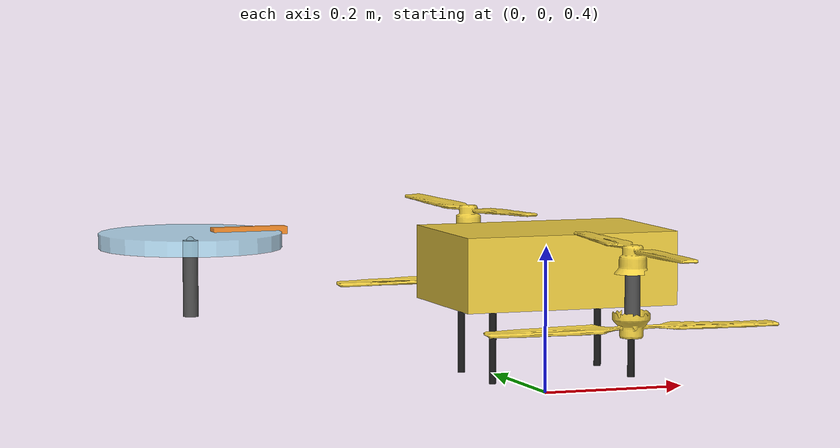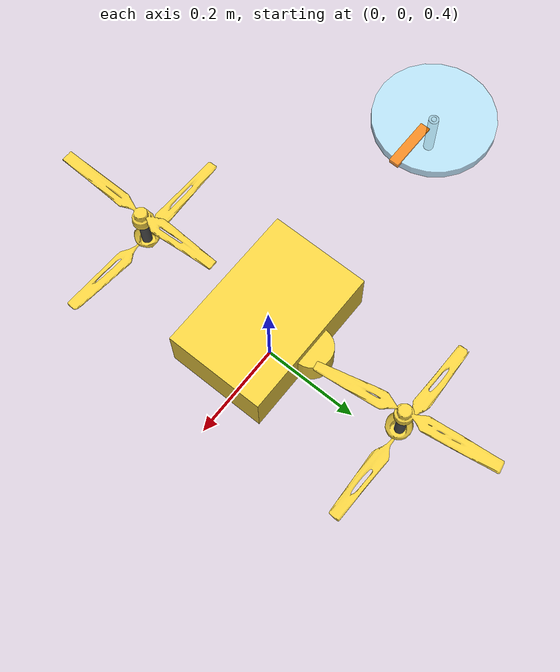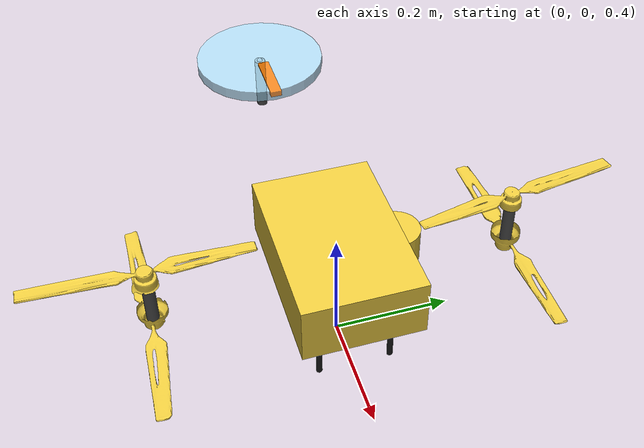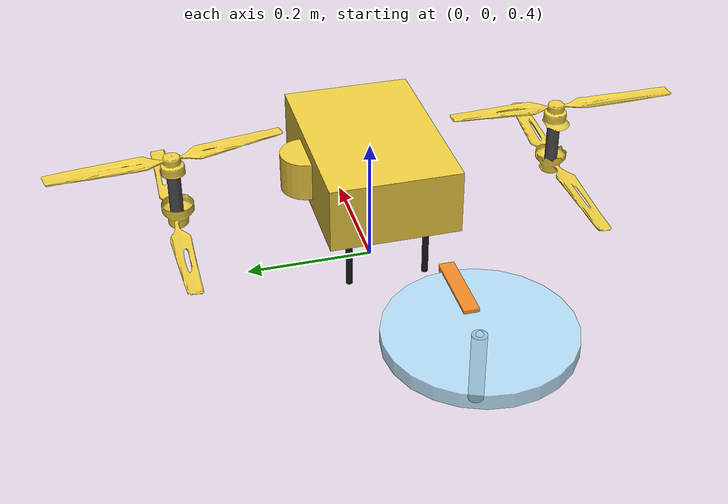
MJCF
<?xml version="1.0" encoding="utf-8"?>
<mujoco>
  <compiler autolimits="true" angle="radian" inertiafromgeom="false" assetdir="assets_hnu"/>

  <!-- 物理环境参数：时间步长、重力、空气密度、粘度 -->
  <option timestep="0.01" gravity="0 0 -9.81" density="1.204" viscosity="1.8e-5"/>

  <asset>
      <!-- 纹理：天空盒渐变效果 -->
      <texture type="skybox" builtin="gradient" width="512" height="512" rgb1="0.6 0.8 1" rgb2="0.2 0.3 0.6"/>

      <!-- 材质：定义视觉和碰撞的材质特性 -->
      <material name="visualGeo" rgba="0.93 0.8 0.25 1"/> <!-- 视觉材质：橙色 -->
      <material name="collisionGeo" rgba="0.3 0.3 0.8 0.5"/> <!-- 碰撞材质：蓝色半透明 -->
      <material name="white" rgba="0.9 0.9 0.9 1"/>
      <material name="orange" rgba="1.0 0.5 0.0 1"/>
      <material name="blue" rgba="0.0 0.5 1.0 1"/>
      <material name="dark_gray" rgba="0.3 0.3 0.3 1"/>
      <material name="cyan" rgba="0.0 1.0 1.0 1"/>
      <material name="black" rgba="0.1 0.1 0.1 1"/>
      <material name="propeller_color1" rgba="0.7 0.9 1.0 0.8"/>
      <material name="propeller_color2" rgba="1.0 0.7 0.7 0.8"/>

      <!-- 网格：只保留螺旋桨部分的网格，其他部分改用基本几何体 -->
      <mesh name="framerb" file="T-framerb.stl"/>
      <mesh name="framert" file="T-framert.stl"/>
      <mesh name="framelb" file="T-framelb.stl"/>
      <mesh name="framelt" file="T-framelt.stl"/>
      <mesh name="frametail" file="T-frametail.stl"/>
  </asset>

  <!-- 修正：将所有default定义合并到同一个顶级default块内 -->
  <default>
      <!-- 无人机类别的默认参数 -->
      <default class="drone">
      <!-- 视觉几何体默认参数：不参与碰撞 -->
      <default class="visual">
          <geom group="2" contype="0" conaffinity="0" material="visualGeo"/>
      </default>
      <!-- 碰撞几何体默认参数：设置接触动力学 -->
      <default class="collision">
          <geom group="3" contype="1" conaffinity="1" material="collisionGeo"/>
      </default>
          <!-- 电机默认控制范围 -->
          <site group="3"/>
          <motor ctrlrange="0 130"/>
      </default>
  </default>

  <worldbody>
    <!-- 无人机主体 -->
    <body name="base_link" pos="0 0 0.575">
    <joint name="free_joint" type="free"/>
    <!-- 无人机机身（立方体） -->
    <geom class="visual" type="box" size="0.15 0.1 0.05"/>
    <geom class="collision" type="box" size="0.15 0.1 0.05"/>
    <inertial pos="0 0 0" mass="3.0" diaginertia="0.01 0.01 0.01"/>
    <site name="imu" pos="0 0 0"/>

      <!-- 机腹四条腿 -->
      <body name="leg_front_right" pos="0.1 0.06 -0.05">
        <geom name="leg_fr" type="cylinder" fromto="0 0 0 0 0 -0.1" size="0.005" material="black" class="visual"/>
        <inertial pos="0 0 -0.05" mass="0.00" diaginertia="0.0001 0.0001 0.0001"/>
      </body>
      <body name="leg_front_left" pos="0.1 -0.06 -0.05">
        <geom name="leg_fl" type="cylinder" fromto="0 0 0 0 0 -0.1" size="0.005" material="black" class="visual"/>
        <inertial pos="0 0 -0.05" mass="0.00" diaginertia="0.0001 0.0001 0.0001"/>
      </body>
      <body name="leg_rear_right" pos="-0.1 0.06 -0.05">
        <geom name="leg_rr" type="cylinder" fromto="0 0 0 0 0 -0.1" size="0.005" material="black" class="visual"/>
        <inertial pos="0 0 -0.05" mass="0.00" diaginertia="0.0001 0.0001 0.0001"/>
      </body>
      <body name="leg_rear_left" pos="-0.1 -0.06 -0.05">
        <geom name="leg_rl" type="cylinder" fromto="0 0 0 0 0 -0.1" size="0.005" material="black" class="visual"/>
        <inertial pos="0 0 -0.05" mass="0.00" diaginertia="0.0001 0.0001 0.0001"/>
      </body>

      <!-- 左机臂和螺旋桨（顺时针旋转 - 橙色） -->
      <body name="right_arm_base" pos="0 0.1 0">
        <!-- 机臂绕自身中心轴旋转关节（Yaw轴） -->
        <joint name="arm_pitch_left" type="hinge" pos="0 0 0" axis="0 1 0" range="-3.1 3.1" damping="0.1"/>

        <!-- 机臂与机身连接的圆柱体 -->
        <!-- 几何体：改用圆柱体表示视觉，保持碰撞圆柱 -->
        <geom class="visual" type="cylinder" size="0.04 0.03"/>
        <geom class="collision" type="cylinder" size="0.04 0.03"/>

        <inertial pos="0 0.1 0" mass="0.3" diaginertia="0.002 0.002 0.002"/>

        <!-- 螺旋桨支撑柱（可倾转） -->
        <body name="right_prop_support" pos="0 0.2 0">
          <!-- 共轴双桨模块倾转关节（Roll轴） -->
          <joint name="prop_tilt_left" type="hinge" pos="0 0 0" axis="1 0 0" limited="true" range="-3.1 3.1"/>

          <geom name="prop_support_r" type="cylinder" fromto="0 0 -0.05 0 0 0.05" size="0.01" material="dark_gray" class="visual"/>
          <inertial pos="0 0 0" mass="0.1" diaginertia="0.001 0.001 0.001"/>

          <!-- 上螺旋桨 -->
          <body name="right_prop_upper" pos="0 0 0.05">
            <joint name="prop_r_upper" type="hinge" pos="0 0 0" axis="0 0 1" limited="false"/>
            <geom name="propeller_r_upper" type="mesh" mesh="framelt" class="visual"/>
            <inertial pos="0 0 0" mass="0.05" diaginertia="0.0005 0.0005 0.0005"/>
            <site name="motor_r_upper" pos="0.0 0.0 0.0" zaxis="0 0 1"/>
          </body>

          <!-- 下螺旋桨 -->
          <body name="right_prop_lower" pos="0 0 -0.05">
            <joint name="prop_r_lower" type="hinge" pos="0 0 0" axis="0 0 1" limited="false"/>
            <geom name="propeller_r_lower" type="mesh" mesh="framelb" class="visual"/>
            <inertial pos="0 0 0" mass="0.05" diaginertia="0.0005 0.0005 0.0005"/>
            <site name="motor_r_lower" pos="0.0 0.0 0.0" zaxis="0 0 1"/>
          </body>
        </body>
      </body>

      <!-- 右机臂和螺旋桨（逆时针旋转 - 蓝色） -->
      <body name="left_arm_base" pos="0 -0.1 0">
        <!-- 机臂绕自身中心轴旋转关节（Yaw轴） -->
        <joint name="arm_pitch_right" type="hinge" pos="0 0 0" axis="0 1 0" limited="true" range="-3.1 3.1"/>

        <!-- 机臂与机身连接的圆柱体 -->
        <geom name="arm_connector_l" type="cylinder" fromto="0 0 0 0 -0.2 0" size="0.008" material="dark_gray" class="collision"/>
        <inertial pos="0 -0.1 0" mass="0.3" diaginertia="0.002 0.002 0.002"/>

        <!-- 螺旋桨支撑柱（可倾转） -->
        <body name="left_prop_support" pos="0 -0.2 0">
          <!-- 共轴双桨模块倾转关节（Roll轴） -->
          <joint name="prop_tilt_right" type="hinge" pos="0 0 0" axis="1 0 0" limited="true" range="-3.1 3.1"/>

          <geom name="prop_support_l" type="cylinder" fromto="0 0 -0.05 0 0 0.05" size="0.01" material="dark_gray" class="visual"/>
          <inertial pos="0 0 0" mass="0.1" diaginertia="0.001 0.001 0.001"/>

          <!-- 上螺旋桨 -->
          <body name="left_prop_upper" pos="0 0 0.05">
            <joint name="prop_l_upper" type="hinge" pos="0 0 0" axis="0 0 1" limited="false"/>
            <geom name="propeller_l_upper" type="mesh" mesh="framert" class="visual"/>
            <inertial pos="0 0 0" mass="0.05" diaginertia="0.0005 0.0005 0.0005"/>
            <site name="motor_l_upper" pos="0.0 0.0 0.0" zaxis="0 0 1"/>
          </body>

          <!-- 下螺旋桨 -->
          <body name="left_prop_lower" pos="0 0 -0.05">
            <joint name="prop_l_lower" type="hinge" pos="0 0 0" axis="0 0 1" limited="false"/>
            <geom name="propeller_l_lower" type="mesh" mesh="framerb" class="visual"/>
            <inertial pos="0 0 0" mass="0.05" diaginertia="0.0005 0.0005 0.0005"/>
            <site name="motor_l_lower" pos="0.0 0.0 0.0" zaxis="0 0 1"/>
          </body>
        </body>
      </body>

      <!-- 后机臂和螺旋桨（顺时针旋转 - 橙色） -->
      <body name="rear_arm_base" pos="-0.1 0 0">
        <geom name="arm_connector_rear" type="cylinder" fromto="0 0 0 -0.4 0 0" size="0.008" material="dark_gray" class="collision"/>
        <inertial pos="-0.2 0 0" mass="0.0" diaginertia="0.002 0.002 0.002"/>

        <!-- 螺旋桨支撑柱（可倾转） -->
        <body name="rear_prop_support" pos="-0.4 0 0">
          <geom name="prop_support_rear" type="cylinder" fromto="0 0 -0.05 0 0 0.05" size="0.01" material="dark_gray" class="visual"/>
          <inertial pos="0 0 0" mass="0.00" diaginertia="0.001 0.001 0.001"/>

          <!-- 上螺旋桨 -->
          <body name="rear_prop_upper" pos="0 0 0.05">
            <joint name="prop_rear_upper" type="hinge" pos="0 0 0" axis="0 0 1" limited="false"/>
            <geom name="propeller_rear_upper" type="cylinder" size="0.12 0.01" euler="0 0 0" material="propeller_color1" class="visual"/>
            <!-- 旋转方向指示器（橙色） -->
            <site name="rotation_indicator_rear_upper" type="box" size="0.05 0.01 0.005" pos="0.08 0 0.01" rgba="1.0 0.5 0.0 0.8"/>
            <inertial pos="0 0 0" mass="0.1" diaginertia="0.0005 0.0005 0.0005"/>
            <site name="motor_rear_upper" pos="0.0 0.0 0.0" zaxis="0 0 1"/>
          </body>
        </body>
      </body>
    </body>

    <light name="light" pos="0 0 5" dir="0 0 -1" directional="true" castshadow="true"/>
  </worldbody>

  <!-- 执行器定义 -->
  <actuator>
    <!-- 螺旋桨转速控制 -->
    <motor name="motor_r_upper" site="motor_r_upper" gear="0 0 1 0 0 -0.006" forcerange="0 25" ctrlrange="0 25"/>
    <motor name="motor_r_lower" site="motor_r_lower" gear="0 0 1 0 0 0.006" forcerange="0 25" ctrlrange="0 25"/>
    <motor name="motor_l_upper" site="motor_l_upper" gear="0 0 1 0 0 0.006" forcerange="0 25" ctrlrange="0 25"/>
    <motor name="motor_l_lower" site="motor_l_lower" gear="0 0 1 0 0 -0.006" forcerange="0 25" ctrlrange="0 25"/>
    <motor name="motor_rear_upper" site="motor_rear_upper" gear="0 0 1 0 0 0" forcerange="-10 10" ctrlrange="-10 10"/>

    <!-- 机臂偏航控制（位置伺服） -->
    <position name="tilt_pitch_left" joint="arm_pitch_left" kp="15" kv="3"/>
    <position name="tilt_pitch_right" joint="arm_pitch_right" kp="15" kv="3"/>

    <!-- 螺旋桨倾转控制（位置伺服） -->
    <position name="tilt_roll_left" joint="prop_tilt_left" kp="15" kv="3"/>
    <position name="tilt_roll_right" joint="prop_tilt_right" kp="15" kv="3"/>
  </actuator>

  <sensor>
    <!-- 位置和姿态传感器 -->
    <framepos name="drone_pos" objtype="body" objname="base_link"/>
    <framequat name="drone_quat" objtype="body" objname="base_link"/>

    <!-- 螺旋桨速度传感器 -->
    <jointvel name="prop_r_upper_vel" joint="prop_r_upper"/>
    <jointvel name="prop_r_lower_vel" joint="prop_r_lower"/>
    <jointvel name="prop_l_upper_vel" joint="prop_l_upper"/>
    <jointvel name="prop_l_lower_vel" joint="prop_l_lower"/>
    <jointvel name="prop_rear_upper_vel" joint="prop_rear_upper"/>

    <!-- 倾转角度传感器 -->
    <jointpos name="arm_pitch_left_pos" joint="arm_pitch_left"/>
    <jointpos name="arm_pitch_right_pos" joint="arm_pitch_right"/>
    <jointpos name="prop_tilt_left_pos" joint="prop_tilt_left"/>
    <jointpos name="prop_tilt_right_pos" joint="prop_tilt_right"/>

    <!-- 执行器状态传感器 -->
    <actuatorfrc name="motor_r_upper_torque" actuator="motor_r_upper"/>
    <actuatorfrc name="motor_r_lower_torque" actuator="motor_r_lower"/>
    <actuatorfrc name="motor_l_upper_torque" actuator="motor_l_upper"/>
    <actuatorfrc name="motor_l_lower_torque" actuator="motor_l_lower"/>
    <actuatorfrc name="motor_rear_upper_torque" actuator="motor_rear_upper"/>
  </sensor>
</mujoco>
